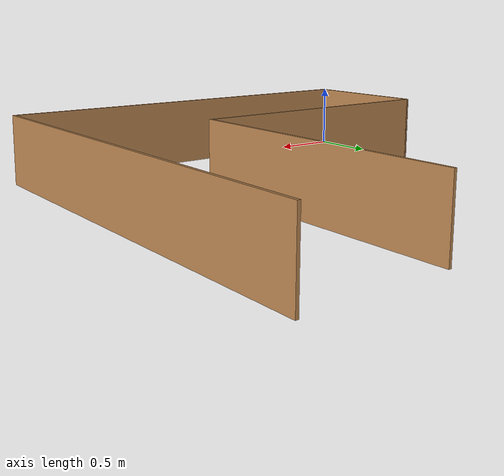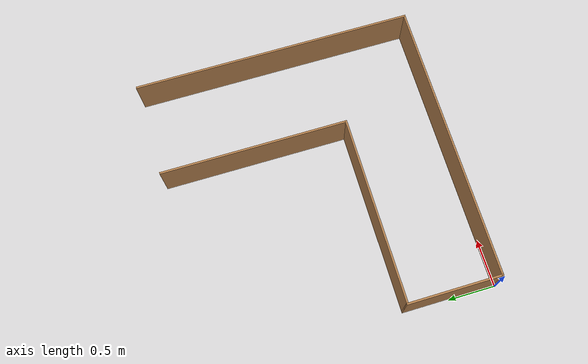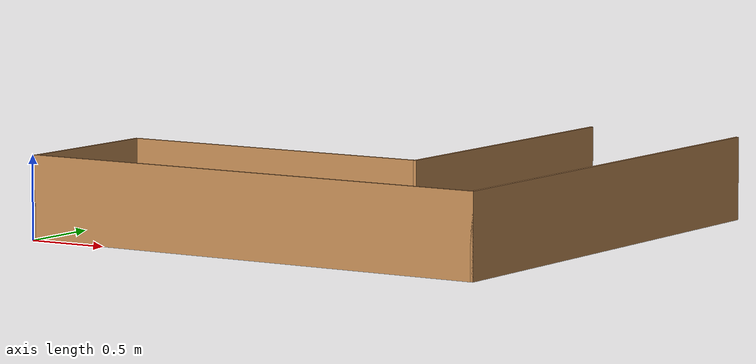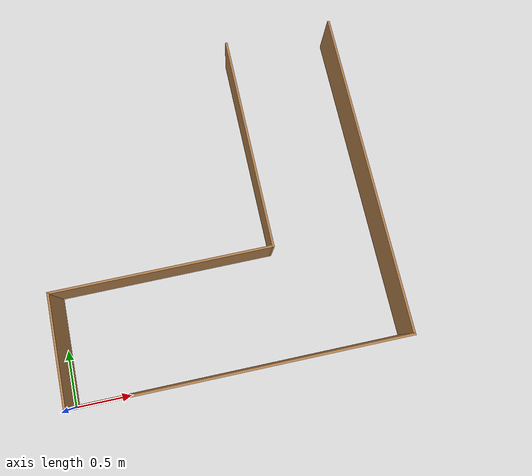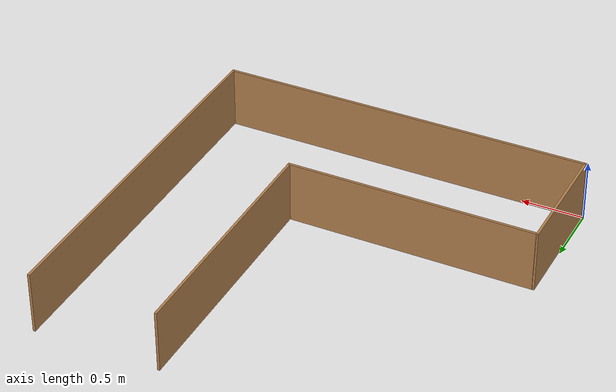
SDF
<?xml version='1.0'?>
<sdf version='1.6'>
  <model name='Motion2v3'>
    <pose frame=''>1.51 1.5 0 0 -0 0</pose>
    <link name='Wall_0'>
      <collision name='Wall_0_Collision'>
        <geometry>
          <box>
            <size>3 0.02 0.5</size>
          </box>
        </geometry>
        <pose frame=''>0 0 0.25 0 -0 0</pose>
      </collision>
      <visual name='Wall_0_Visual'>
        <pose frame=''>0 0 0.25 0 -0 0</pose>
        <geometry>
          <box>
            <size>3 0.02 0.5</size>
          </box>
        </geometry>
        <material>
          <script>
            <uri>file://media/materials/scripts/gazebo.material</uri>
            <name>Gazebo/Wood</name>
          </script>
          <ambient>1 1 1 1</ambient>
        </material>
        <meta>
          <layer>0</layer>
        </meta>
      </visual>
      <pose frame=''>-0 -1.49 0 0 -0 0</pose>
    </link>
    <link name='Wall_2'>
      <collision name='Wall_2_Collision'>
        <geometry>
          <box>
            <size>1 0.02 0.5</size>
          </box>
        </geometry>
        <pose frame=''>0 0 0.25 0 -0 0</pose>
      </collision>
      <visual name='Wall_2_Visual'>
        <pose frame=''>0 0 0.25 0 -0 0</pose>
        <geometry>
          <box>
            <size>1 0.02 0.5</size>
          </box>
        </geometry>
        <material>
          <script>
            <uri>file://media/materials/scripts/gazebo.material</uri>
            <name>Gazebo/Wood</name>
          </script>
          <ambient>1 1 1 1</ambient>
        </material>
        <meta>
          <layer>0</layer>
        </meta>
      </visual>
      <pose frame=''>-1.49 -1 0 0 -0 1.5708</pose>
    </link>
    <link name='Wall_4'>
      <collision name='Wall_4_Collision'>
        <geometry>
          <box>
            <size>2 0.02 0.5</size>
          </box>
        </geometry>
        <pose frame=''>0 0 0.25 0 -0 0</pose>
      </collision>
      <visual name='Wall_4_Visual'>
        <pose frame=''>0 0 0.25 0 -0 0</pose>
        <geometry>
          <box>
            <size>2 0.02 0.5</size>
          </box>
        </geometry>
        <material>
          <script>
            <uri>file://media/materials/scripts/gazebo.material</uri>
            <name>Gazebo/Wood</name>
          </script>
          <ambient>1 1 1 1</ambient>
        </material>
        <meta>
          <layer>0</layer>
        </meta>
      </visual>
      <pose frame=''>-0.5 -0.51 0 0 -0 0</pose>
    </link>
    <link name='Wall_6'>
      <collision name='Wall_6_Collision'>
        <geometry>
          <box>
            <size>3 0.02 0.5</size>
          </box>
        </geometry>
        <pose frame=''>0 0 0.25 0 -0 0</pose>
      </collision>
      <visual name='Wall_6_Visual'>
        <pose frame=''>0 0 0.25 0 -0 0</pose>
        <geometry>
          <box>
            <size>3 0.02 0.5</size>
          </box>
        </geometry>
        <material>
          <script>
            <uri>file://media/materials/scripts/gazebo.material</uri>
            <name>Gazebo/Wood</name>
          </script>
          <ambient>1 1 1 1</ambient>
        </material>
        <meta>
          <layer>0</layer>
        </meta>
      </visual>
      <pose frame=''>1.49 0 0 0 -0 1.5708</pose>
    </link>
    <link name='Wall_8'>
      <collision name='Wall_8_Collision'>
        <geometry>
          <box>
            <size>2 0.02 0.5</size>
          </box>
        </geometry>
        <pose frame=''>0 0 0.25 0 -0 0</pose>
      </collision>
      <visual name='Wall_8_Visual'>
        <pose frame=''>0 0 0.25 0 -0 0</pose>
        <geometry>
          <box>
            <size>2 0.02 0.5</size>
          </box>
        </geometry>
        <material>
          <script>
            <uri>file://media/materials/scripts/gazebo.material</uri>
            <name>Gazebo/Wood</name>
          </script>
          <ambient>1 1 1 1</ambient>
        </material>
        <meta>
          <layer>0</layer>
        </meta>
      </visual>
      <pose frame=''>0.49 0.48 0 0 -0 1.5708</pose>
    </link>
    <static>1</static>
  </model>
</sdf>
